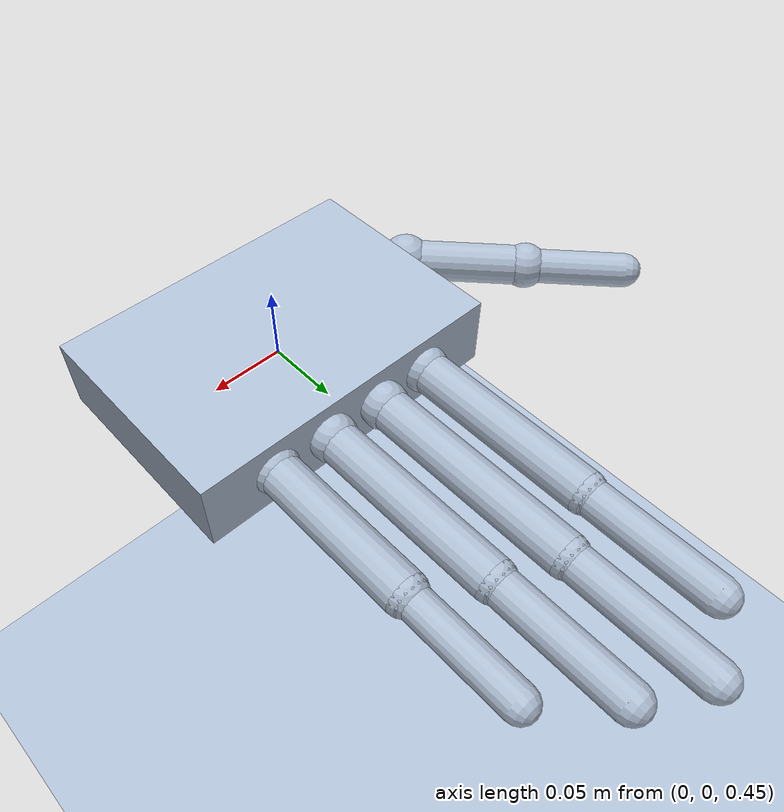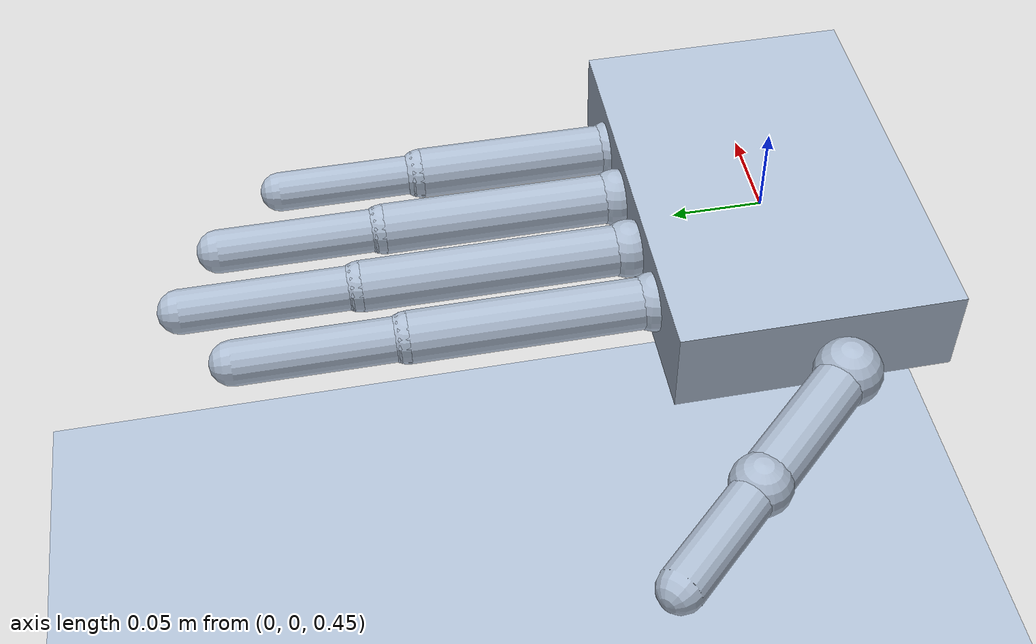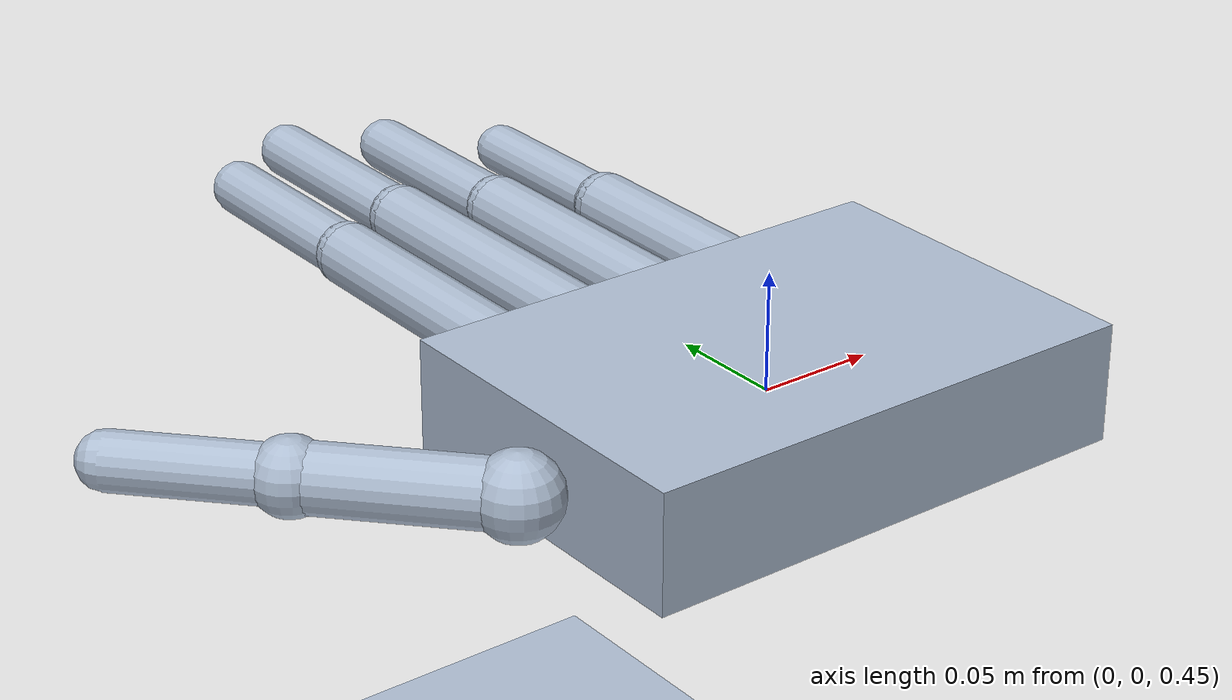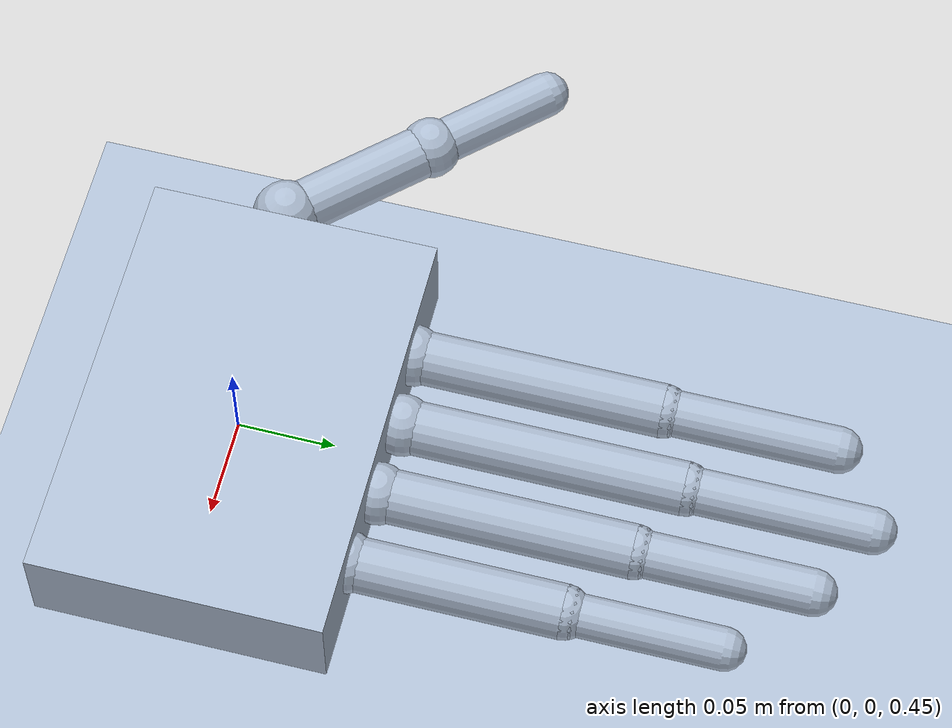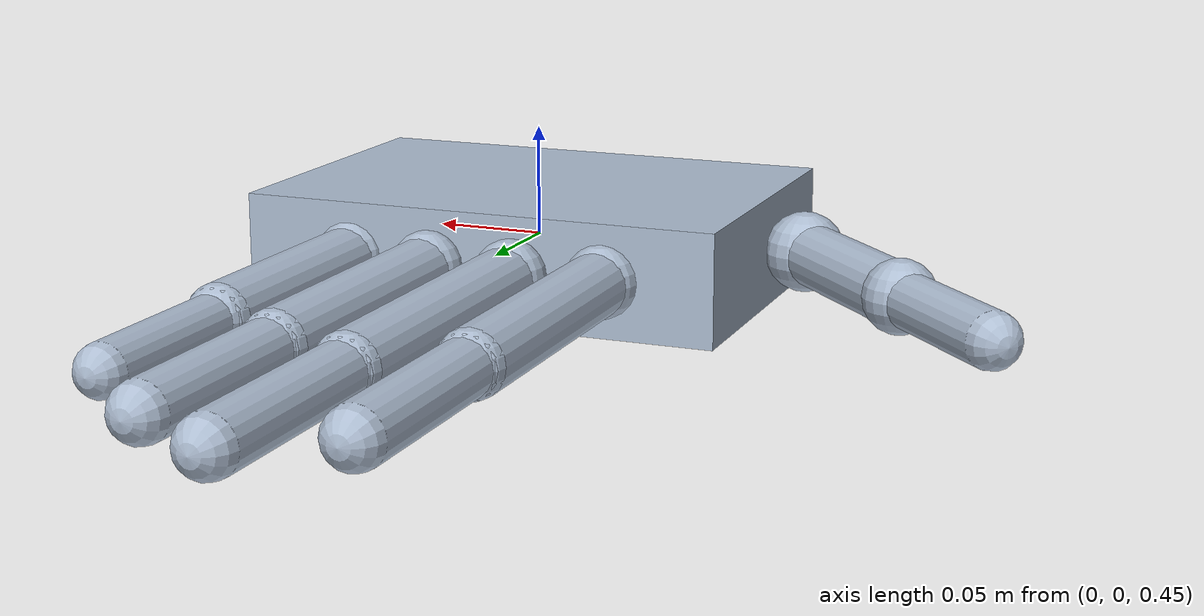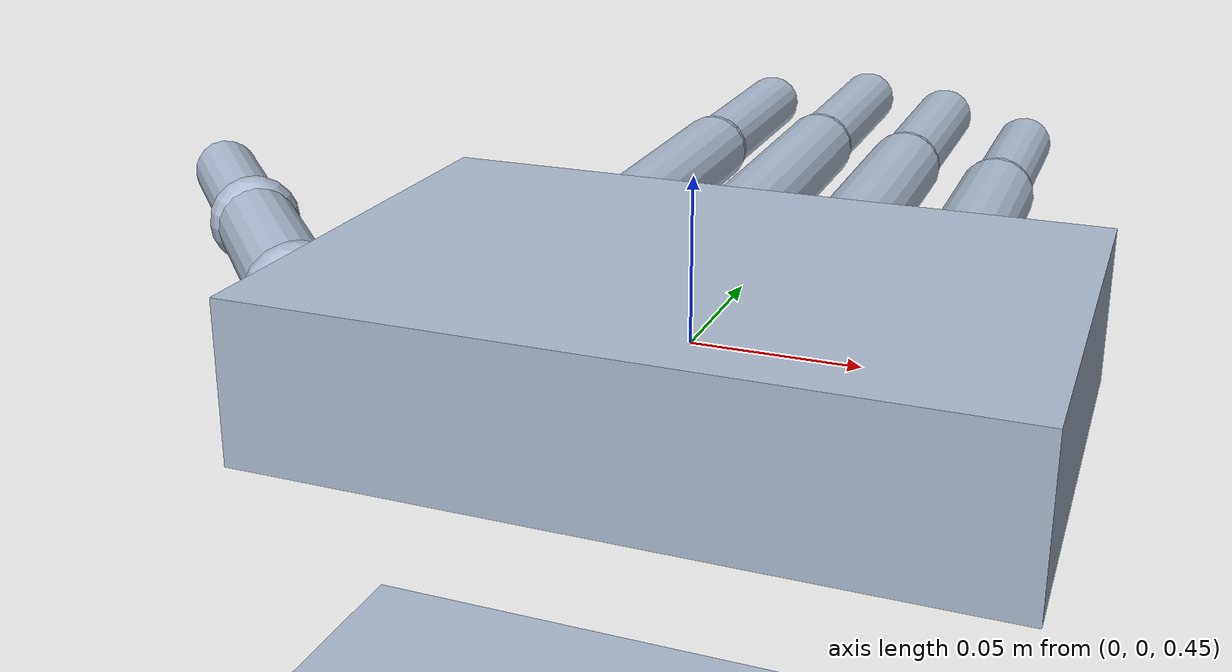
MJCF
<mujoco model="dexvision_debug_hand_scene">
  <compiler angle="radian"/>

  <option timestep="0.002" gravity="0 0 -9.81"/>

  <default>
    <joint limited="true" damping="0.25" armature="0.002"/>
    <geom type="capsule" size="0.014" density="350" rgba="0.68 0.74 0.82 1"/>
    <position ctrllimited="true" kp="8"/>
  </default>

  <asset>
    <texture name="skybox" type="skybox" builtin="gradient" rgb1="0.48 0.58 0.68" rgb2="0.06 0.07 0.08" width="512" height="512"/>
    <texture name="ground_grid" type="2d" builtin="checker" rgb1="0.18 0.22 0.24" rgb2="0.12 0.15 0.17" width="512" height="512"/>
    <material name="ground_grid" texture="ground_grid" texrepeat="6 6" reflectance="0.15"/>
    <material name="palm_mat" rgba="0.22 0.30 0.38 1"/>
    <material name="finger_mat" rgba="0.68 0.74 0.82 1"/>
    <material name="joint_mat" rgba="0.95 0.57 0.22 1"/>
  </asset>

  <worldbody>
    <light name="key_light" pos="0 -2 2.4" dir="0 1 -1" diffuse="0.9 0.9 0.85"/>
    <geom name="ground" type="plane" size="2 2 0.05" material="ground_grid"/>

    <body name="palm" pos="0 0 0.45">
      <geom name="palm_geom" type="box" size="0.11 0.075 0.025" mass="0.35" material="palm_mat"/>

      <body name="thumb_proximal" pos="-0.125 -0.01 0.0" euler="0 0 0.75">
        <joint name="thumb_abduction" type="hinge" axis="0 0 1" range="-0.6 0.6"/>
        <geom name="thumb_abduction_marker" type="sphere" size="0.018" mass="0.005" material="joint_mat"/>
        <geom name="thumb_proximal_geom" fromto="0 0 0 0 0.085 0" material="finger_mat"/>
        <body name="thumb_distal" pos="0 0.085 0">
          <joint name="thumb_flexion" type="hinge" axis="1 0 0" range="0 1.2"/>
          <geom name="thumb_flexion_marker" type="sphere" size="0.016" mass="0.004" material="joint_mat"/>
          <geom name="thumb_distal_geom" fromto="0 0 0 0 0.07 0" size="0.012" material="finger_mat"/>
        </body>
      </body>

      <body name="index_proximal" pos="-0.06 0.075 0.0">
        <joint name="index_mcp" type="hinge" axis="1 0 0" range="-0.15 1.45"/>
        <geom name="index_mcp_marker" type="sphere" size="0.016" mass="0.004" material="joint_mat"/>
        <geom name="index_proximal_geom" fromto="0 0 0 0 0.13 0" material="finger_mat"/>
        <body name="index_distal" pos="0 0.13 0">
          <joint name="index_pip" type="hinge" axis="1 0 0" range="0 1.6"/>
          <geom name="index_pip_marker" type="sphere" size="0.014" mass="0.003" material="joint_mat"/>
          <geom name="index_distal_geom" fromto="0 0 0 0 0.09 0" size="0.012" material="finger_mat"/>
        </body>
      </body>

      <body name="middle_proximal" pos="-0.02 0.08 0.0">
        <joint name="middle_mcp" type="hinge" axis="1 0 0" range="-0.15 1.45"/>
        <geom name="middle_mcp_marker" type="sphere" size="0.016" mass="0.004" material="joint_mat"/>
        <geom name="middle_proximal_geom" fromto="0 0 0 0 0.145 0" material="finger_mat"/>
        <body name="middle_distal" pos="0 0.145 0">
          <joint name="middle_pip" type="hinge" axis="1 0 0" range="0 1.6"/>
          <geom name="middle_pip_marker" type="sphere" size="0.014" mass="0.003" material="joint_mat"/>
          <geom name="middle_distal_geom" fromto="0 0 0 0 0.095 0" size="0.012" material="finger_mat"/>
        </body>
      </body>

      <body name="ring_proximal" pos="0.02 0.078 0.0">
        <joint name="ring_mcp" type="hinge" axis="1 0 0" range="-0.15 1.45"/>
        <geom name="ring_mcp_marker" type="sphere" size="0.016" mass="0.004" material="joint_mat"/>
        <geom name="ring_proximal_geom" fromto="0 0 0 0 0.13 0" material="finger_mat"/>
        <body name="ring_distal" pos="0 0.13 0">
          <joint name="ring_pip" type="hinge" axis="1 0 0" range="0 1.6"/>
          <geom name="ring_pip_marker" type="sphere" size="0.014" mass="0.003" material="joint_mat"/>
          <geom name="ring_distal_geom" fromto="0 0 0 0 0.09 0" size="0.012" material="finger_mat"/>
        </body>
      </body>

      <body name="pinky_proximal" pos="0.06 0.072 0.0">
        <joint name="pinky_mcp" type="hinge" axis="1 0 0" range="-0.15 1.35"/>
        <geom name="pinky_mcp_marker" type="sphere" size="0.016" mass="0.004" material="joint_mat"/>
        <geom name="pinky_proximal_geom" fromto="0 0 0 0 0.11 0" material="finger_mat"/>
        <body name="pinky_distal" pos="0 0.11 0">
          <joint name="pinky_pip" type="hinge" axis="1 0 0" range="0 1.5"/>
          <geom name="pinky_pip_marker" type="sphere" size="0.014" mass="0.003" material="joint_mat"/>
          <geom name="pinky_distal_geom" fromto="0 0 0 0 0.08 0" size="0.011" material="finger_mat"/>
        </body>
      </body>
    </body>

    <camera name="overview" pos="0.55 -0.75 0.75" euler="1.05 0 0.62"/>
  </worldbody>

  <actuator>
    <position name="thumb_abduction_position" joint="thumb_abduction" ctrlrange="-0.6 0.6"/>
    <position name="thumb_flexion_position" joint="thumb_flexion" ctrlrange="0 1.2"/>
    <position name="index_mcp_position" joint="index_mcp" ctrlrange="-0.15 1.45"/>
    <position name="index_pip_position" joint="index_pip" ctrlrange="0 1.6"/>
    <position name="middle_mcp_position" joint="middle_mcp" ctrlrange="-0.15 1.45"/>
    <position name="middle_pip_position" joint="middle_pip" ctrlrange="0 1.6"/>
    <position name="ring_mcp_position" joint="ring_mcp" ctrlrange="-0.15 1.45"/>
    <position name="ring_pip_position" joint="ring_pip" ctrlrange="0 1.6"/>
    <position name="pinky_mcp_position" joint="pinky_mcp" ctrlrange="-0.15 1.35"/>
    <position name="pinky_pip_position" joint="pinky_pip" ctrlrange="0 1.5"/>
  </actuator>
</mujoco>
